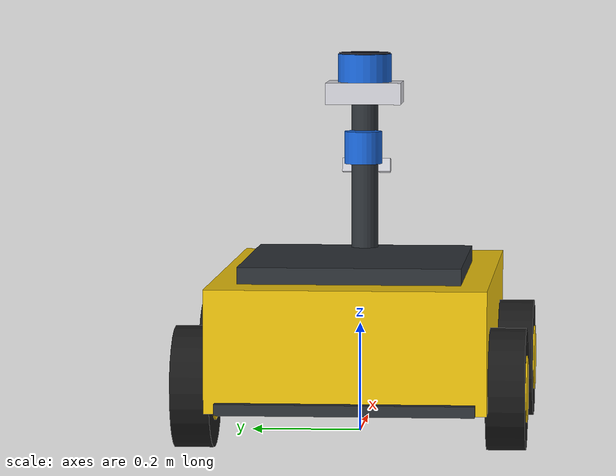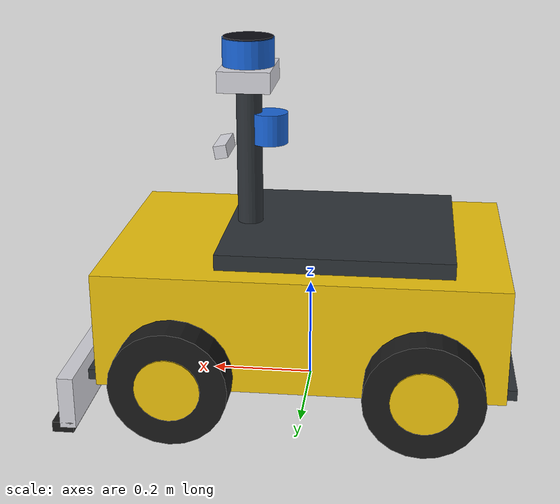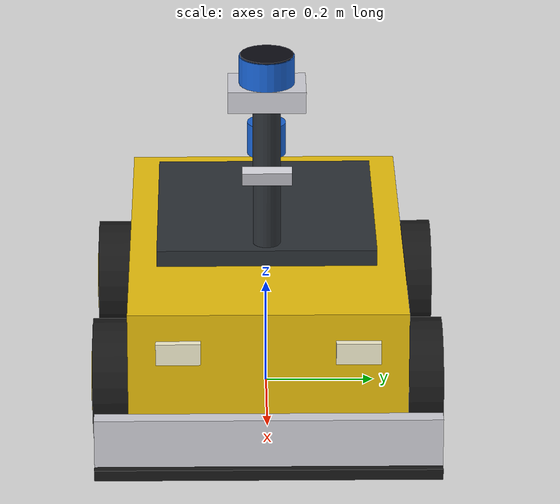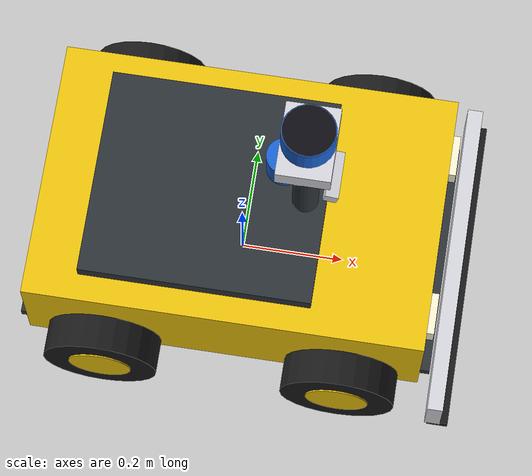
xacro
<?xml version="1.0"?>
<robot name="poultry_bot" xmlns:xacro="http://www.ros.org/wiki/xacro">

  <!-- CONSTANTS & PROPERTIES                                                -->
  <xacro:property name="chassis_mass" value="32.0"/>
  <xacro:property name="chassis_length" value="0.76"/>
  <xacro:property name="chassis_width" value="0.50"/>
  <xacro:property name="chassis_height" value="0.22"/>

  <xacro:property name="wheel_mass" value="2.5"/>
  <xacro:property name="wheel_radius" value="0.11"/>
  <xacro:property name="wheel_width" value="0.07"/>
  <xacro:property name="wheel_track" value="0.56"/>
  <xacro:property name="wheel_base" value="0.46"/>

  <xacro:property name="scraper_mass" value="4.0"/>
  <xacro:property name="scraper_width" value="0.62"/>
  <xacro:property name="scraper_height" value="0.10"/>

  <!-- Color Materials -->
  <material name="agricultural_yellow">
    <color rgba="0.95 0.78 0.05 1.0"/>
  </material>
  <material name="chassis_dark">
    <color rgba="0.18 0.20 0.22 1.0"/>
  </material>
  <material name="rubber_tread">
    <color rgba="0.10 0.10 0.10 1.0"/>
  </material>
  <material name="stainless_steel">
    <color rgba="0.85 0.85 0.88 1.0"/>
  </material>
  <material name="sensor_blue">
    <color rgba="0.10 0.40 0.85 1.0"/>
  </material>
  <material name="lens_glass">
    <color rgba="0.05 0.05 0.08 0.9"/>
  </material>
  <material name="led_emissive">
    <color rgba="1.0 0.98 0.85 1.0"/>
  </material>

  <!-- BASE FOOTPRINT & BASE LINK                                            -->
  <link name="base_footprint"/>

  <joint name="base_footprint_joint" type="fixed">
    <parent link="base_footprint"/>
    <child link="base_link"/>
    <origin xyz="0 0 ${wheel_radius}" rpy="0 0 0"/>
  </joint>

  <link name="base_link">
    <!-- Main Low-Profile Chassis Body -->
    <visual>
      <origin xyz="0 0 0.08" rpy="0 0 0"/>
      <geometry>
        <box size="${chassis_length} ${chassis_width} ${chassis_height}"/>
      </geometry>
      <material name="agricultural_yellow"/>
    </visual>
    <collision>
      <origin xyz="0 0 0.08" rpy="0 0 0"/>
      <geometry>
        <box size="${chassis_length} ${chassis_width} ${chassis_height}"/>
      </geometry>
    </collision>

    <!-- Lower Protective Skid Plate -->
    <visual>
      <origin xyz="0 0 -0.02" rpy="0 0 0"/>
      <geometry>
        <box size="${chassis_length + 0.04} ${chassis_width - 0.04} 0.02"/>
      </geometry>
      <material name="chassis_dark"/>
    </visual>

    <!-- Upper Sealed Electronics Hood -->
    <visual>
      <origin xyz="-0.06 0 0.20" rpy="0 0 0"/>
      <geometry>
        <box size="0.44 0.40 0.04"/>
      </geometry>
      <material name="chassis_dark"/>
    </visual>

    <!-- Inspection LED Floodlights (Left & Right) -->
    <visual>
      <origin xyz="0.38 0.16 0.12" rpy="0 0 0"/>
      <geometry>
        <box size="0.03 0.08 0.04"/>
      </geometry>
      <material name="led_emissive"/>
    </visual>
    <visual>
      <origin xyz="0.38 -0.16 0.12" rpy="0 0 0"/>
      <geometry>
        <box size="0.03 0.08 0.04"/>
      </geometry>
      <material name="led_emissive"/>
    </visual>

    <inertial>
      <origin xyz="0 0 0.06" rpy="0 0 0"/>
      <mass value="${chassis_mass}"/>
      <inertia
        ixx="${(1.0/12.0) * chassis_mass * (chassis_width*chassis_width + chassis_height*chassis_height)}"
        ixy="0.0" ixz="0.0"
        iyy="${(1.0/12.0) * chassis_mass * (chassis_length*chassis_length + chassis_height*chassis_height)}"
        iyz="0.0"
        izz="${(1.0/12.0) * chassis_mass * (chassis_length*chassis_length + chassis_width*chassis_width)}"/>
    </inertial>
  </link>

  <!-- FRONT MANURE SCRAPER BLADE                                            -->
  <link name="scraper_blade_link">
    <!-- Curved Stainless Steel Scraper Blade -->
    <visual>
      <origin xyz="0 0 0" rpy="0 0 0"/>
      <geometry>
        <box size="0.03 ${scraper_width} ${scraper_height}"/>
      </geometry>
      <material name="stainless_steel"/>
    </visual>
    <!-- Heavy-Duty Rubber Bottom Squeegee (cleans wood shavings/bedding) -->
    <visual>
      <origin xyz="0.01 0 -0.05" rpy="0 0 0"/>
      <geometry>
        <box size="0.04 ${scraper_width} 0.02"/>
      </geometry>
      <material name="rubber_tread"/>
    </visual>
    <collision>
      <origin xyz="0 0 -0.01" rpy="0 0 0"/>
      <geometry>
        <box size="0.04 ${scraper_width} ${scraper_height}"/>
      </geometry>
    </collision>
    <inertial>
      <origin xyz="0 0 0" rpy="0 0 0"/>
      <mass value="${scraper_mass}"/>
      <inertia
        ixx="0.08" ixy="0.0" ixz="0.0"
        iyy="0.01" iyz="0.0"
        izz="0.08"/>
    </inertial>
  </link>

  <joint name="scraper_blade_joint" type="fixed">
    <parent link="base_link"/>
    <child link="scraper_blade_link"/>
    <!-- Positioned directly in front at floor level -->
    <origin xyz="${chassis_length/2 + 0.04} 0 -0.04" rpy="0 0 0"/>
  </joint>

  <!-- 4-WHEEL ALL-TERRAIN RUBBER TREAD DRIVETRAIN                          -->
  <xacro:macro name="poultry_wheel" params="prefix x_reflect y_reflect">
    <link name="${prefix}_wheel">
      <visual>
        <origin xyz="0 0 0" rpy="1.5707963 0 0"/>
        <geometry>
          <cylinder radius="${wheel_radius}" length="${wheel_width}"/>
        </geometry>
        <material name="rubber_tread"/>
      </visual>
      <!-- Rim Accent -->
      <visual>
        <origin xyz="0 0 0" rpy="1.5707963 0 0"/>
        <geometry>
          <cylinder radius="${wheel_radius * 0.55}" length="${wheel_width + 0.005}"/>
        </geometry>
        <material name="agricultural_yellow"/>
      </visual>
      <collision>
        <origin xyz="0 0 0" rpy="1.5707963 0 0"/>
        <geometry>
          <cylinder radius="${wheel_radius}" length="${wheel_width}"/>
        </geometry>
      </collision>
      <inertial>
        <origin xyz="0 0 0" rpy="1.5707963 0 0"/>
        <mass value="${wheel_mass}"/>
        <inertia
          ixx="${(1.0/12.0) * wheel_mass * (3*wheel_radius*wheel_radius + wheel_width*wheel_width)}"
          ixy="0.0" ixz="0.0"
          iyy="${(1.0/12.0) * wheel_mass * (3*wheel_radius*wheel_radius + wheel_width*wheel_width)}"
          iyz="0.0"
          izz="${0.5 * wheel_mass * wheel_radius * wheel_radius}"/>
      </inertial>
    </link>

    <joint name="${prefix}_wheel_joint" type="continuous">
      <parent link="base_link"/>
      <child link="${prefix}_wheel"/>
      <origin xyz="${x_reflect * wheel_base/2} ${y_reflect * wheel_track/2} 0.0" rpy="0 0 0"/>
      <axis xyz="0 1 0"/>
      <dynamics damping="0.1" friction="0.1"/>
    </joint>

    <gazebo reference="${prefix}_wheel">
      <mu1>1.2</mu1>
      <mu2>1.0</mu2>
      <kp>1000000.0</kp>
      <kd>10.0</kd>
      <minDepth>0.003</minDepth>
      <maxVel>2.0</maxVel>
      <material>Gazebo/DarkGrey</material>
    </gazebo>
  </xacro:macro>

  <xacro:poultry_wheel prefix="front_left"  x_reflect="1"  y_reflect="1"/>
  <xacro:poultry_wheel prefix="front_right" x_reflect="1"  y_reflect="-1"/>
  <xacro:poultry_wheel prefix="rear_left"   x_reflect="-1" y_reflect="1"/>
  <xacro:poultry_wheel prefix="rear_right"  x_reflect="-1" y_reflect="-1"/>

  <!-- SENSOR MAST & ENVIRONMENTAL POD                                       -->
  <link name="mast_link">
    <visual>
      <origin xyz="0 0 0.16" rpy="0 0 0"/>
      <geometry>
        <cylinder radius="0.025" length="0.32"/>
      </geometry>
      <material name="chassis_dark"/>
    </visual>
    <visual>
      <origin xyz="0 0 0.32" rpy="0 0 0"/>
      <geometry>
        <box size="0.10 0.14 0.04"/>
      </geometry>
      <material name="stainless_steel"/>
    </visual>
    <collision>
      <origin xyz="0 0 0.16" rpy="0 0 0"/>
      <geometry>
        <cylinder radius="0.03" length="0.32"/>
      </geometry>
    </collision>
    <inertial>
      <origin xyz="0 0 0.16" rpy="0 0 0"/>
      <mass value="1.2"/>
      <inertia ixx="0.01" ixy="0" ixz="0" iyy="0.01" iyz="0" izz="0.005"/>
    </inertial>
  </link>

  <joint name="mast_joint" type="fixed">
    <parent link="base_link"/>
    <child link="mast_link"/>
    <origin xyz="0.12 0 0.19" rpy="0 0 0"/>
  </joint>

  <!-- Environmental Sensing Pod (NH3 Ammonia, CO2, Temp/Humidity) -->
  <link name="gas_sensor_link">
    <visual>
      <origin xyz="0 0 0" rpy="0 0 0"/>
      <geometry>
        <cylinder radius="0.035" length="0.06"/>
      </geometry>
      <material name="sensor_blue"/>
    </visual>
    <inertial>
      <mass value="0.3"/>
      <inertia ixx="0.001" ixy="0" ixz="0" iyy="0.001" iyz="0" izz="0.001"/>
    </inertial>
  </link>

  <joint name="gas_sensor_joint" type="fixed">
    <parent link="mast_link"/>
    <child link="gas_sensor_link"/>
    <origin xyz="-0.04 0 0.22" rpy="0 0 0"/>
  </joint>

  <!-- 360° 16-BEAM 3D GPU LIDAR                                             -->
  <link name="lidar_link">
    <visual>
      <origin xyz="0 0 0" rpy="0 0 0"/>
      <geometry>
        <cylinder radius="0.05" length="0.065"/>
      </geometry>
      <material name="sensor_blue"/>
    </visual>
    <visual>
      <origin xyz="0 0 0.02" rpy="0 0 0"/>
      <geometry>
        <cylinder radius="0.048" length="0.03"/>
      </geometry>
      <material name="lens_glass"/>
    </visual>
    <collision>
      <origin xyz="0 0 0" rpy="0 0 0"/>
      <geometry>
        <cylinder radius="0.05" length="0.065"/>
      </geometry>
    </collision>
    <inertial>
      <mass value="0.8"/>
      <inertia ixx="0.002" ixy="0" ixz="0" iyy="0.002" iyz="0" izz="0.002"/>
    </inertial>
  </link>

  <joint name="lidar_joint" type="fixed">
    <parent link="mast_link"/>
    <child link="lidar_link"/>
    <!-- Positioned at top of mast Z = 0.36 above base -->
    <origin xyz="0 0 0.36" rpy="0 0 0"/>
  </joint>

  <gazebo reference="lidar_link">
    <sensor name="gpu_lidar" type="gpu_lidar">
      <pose>0 0 0 0 0 0</pose>
      <always_on>true</always_on>
      <visualize>false</visualize>
      <update_rate>10</update_rate>
      <ray>
        <scan>
          <horizontal>
            <samples>360</samples>
            <resolution>1</resolution>
            <min_angle>-3.1415926</min_angle>
            <max_angle>3.1415926</max_angle>
          </horizontal>
          <vertical>
            <samples>16</samples>
            <resolution>1</resolution>
            <min_angle>-0.261799</min_angle>
            <max_angle>0.261799</max_angle>
          </vertical>
        </scan>
        <range>
          <min>0.15</min>
          <max>25.0</max>
          <resolution>0.02</resolution>
        </range>
        <noise>
          <type>gaussian</type>
          <mean>0.0</mean>
          <stddev>0.01</stddev>
        </noise>
      </ray>
      <topic>/scan</topic>
      <gz_frame_id>lidar_link</gz_frame_id>
    </sensor>
  </gazebo>

  <!-- INTEL REALSENSE D435 RGB-D CAMERA WITH OPTICAL FRAME CONVENTION       -->
  <link name="camera_link">
    <visual>
      <origin xyz="0 0 0" rpy="0 0 0"/>
      <geometry>
        <box size="0.025 0.090 0.025"/>
      </geometry>
      <material name="stainless_steel"/>
    </visual>
    <collision>
      <geometry>
        <box size="0.025 0.090 0.025"/>
      </geometry>
    </collision>
    <inertial>
      <mass value="0.25"/>
      <inertia ixx="0.0005" ixy="0" ixz="0" iyy="0.0005" iyz="0" izz="0.0005"/>
    </inertial>
  </link>

  <joint name="camera_joint" type="fixed">
    <parent link="mast_link"/>
    <child link="camera_link"/>
    <!-- Angled slightly downward (10 deg pitch = 0.1745 rad) to view floor hens/eggs -->
    <origin xyz="0.05 0 0.18" rpy="0 0.1745 0"/>
  </joint>

  <!-- Standard ROS Optical Coordinate Convention: R,P,Y = [-90°, 0°, -90°] -->
  <link name="camera_depth_optical_frame"/>

  <joint name="camera_optical_joint" type="fixed">
    <parent link="camera_link"/>
    <child link="camera_depth_optical_frame"/>
    <origin xyz="0 0 0" rpy="-1.5707963 0 -1.5707963"/>
  </joint>

  <gazebo reference="camera_link">
    <!-- RGB Color Camera -->
    <sensor name="camera_rgb" type="camera">
      <pose>0 0 0 0 0 0</pose>
      <always_on>true</always_on>
      <update_rate>20</update_rate>
      <visualize>false</visualize>
      <camera>
        <horizontal_fov>1.5184</horizontal_fov> <!-- 87 deg H FOV -->
        <image>
          <width>640</width>
          <height>480</height>
          <format>R8G8B8</format>
        </image>
        <clip>
          <near>0.10</near>
          <far>15.0</far>
        </clip>
        <noise>
          <type>gaussian</type>
          <mean>0.0</mean>
          <stddev>0.007</stddev>
        </noise>
      </camera>
      <topic>/camera/color/image_raw</topic>
      <gz_frame_id>camera_depth_optical_frame</gz_frame_id>
    </sensor>

    <!-- Depth Camera Sensor -->
    <sensor name="camera_depth" type="depth_camera">
      <pose>0 0 0 0 0 0</pose>
      <always_on>true</always_on>
      <update_rate>20</update_rate>
      <visualize>false</visualize>
      <camera>
        <horizontal_fov>1.5184</horizontal_fov>
        <image>
          <width>640</width>
          <height>480</height>
          <format>R_FLOAT32</format>
        </image>
        <clip>
          <near>0.15</near>
          <far>10.0</far>
        </clip>
      </camera>
      <topic>/camera/depth/image_raw</topic>
      <gz_frame_id>camera_depth_optical_frame</gz_frame_id>
    </sensor>
  </gazebo>

  <!-- 9-DOF IMU SENSOR                                                      -->
  <link name="imu_link">
    <inertial>
      <mass value="0.05"/>
      <inertia ixx="0.0001" ixy="0" ixz="0" iyy="0.0001" iyz="0" izz="0.0001"/>
    </inertial>
  </link>

  <joint name="imu_joint" type="fixed">
    <parent link="base_link"/>
    <child link="imu_link"/>
    <origin xyz="0 0 0.08" rpy="0 0 0"/>
  </joint>

  <gazebo reference="imu_link">
    <sensor name="imu_sensor" type="imu">
      <always_on>true</always_on>
      <update_rate>100</update_rate>
      <visualize>false</visualize>
      <topic>/imu/data</topic>
      <gz_frame_id>imu_link</gz_frame_id>
    </sensor>
  </gazebo>

  <!-- GAZEBO SIMULATION PLUGINS                                             -->
  <gazebo>
    <!-- 4WD Differential Drive / Skid-Steer Controller -->
    <plugin filename="gz-sim-diff-drive-system" name="gz::sim::systems::DiffDrive">
      <!-- Left side wheels -->
      <left_joint>front_left_wheel_joint</left_joint>
      <left_joint>rear_left_wheel_joint</left_joint>

      <!-- Right side wheels -->
      <right_joint>front_right_wheel_joint</right_joint>
      <right_joint>rear_right_wheel_joint</right_joint>

      <wheel_separation>${wheel_track}</wheel_separation>
      <wheel_radius>${wheel_radius}</wheel_radius>

      <odom_publish_frequency>50</odom_publish_frequency>
      <topic>/cmd_vel</topic>
      <odom_topic>/odom</odom_topic>
      <tf_topic>/tf</tf_topic>
      <frame_id>odom</frame_id>
      <child_frame_id>base_footprint</child_frame_id>
    </plugin>

    <!-- Joint State Publisher Plugin -->
    <plugin filename="gz-sim-joint-state-publisher-system" name="gz::sim::systems::JointStatePublisher">
      <topic>/joint_states</topic>
      <joint_name>front_left_wheel_joint</joint_name>
      <joint_name>front_right_wheel_joint</joint_name>
      <joint_name>rear_left_wheel_joint</joint_name>
      <joint_name>rear_right_wheel_joint</joint_name>
    </plugin>
  </gazebo>

</robot>
